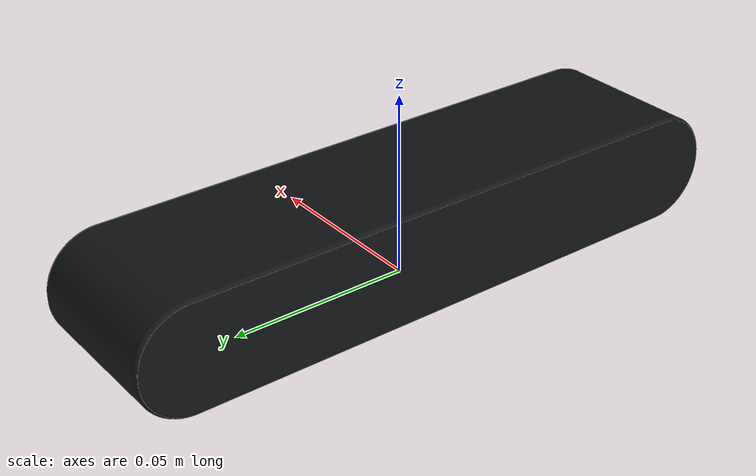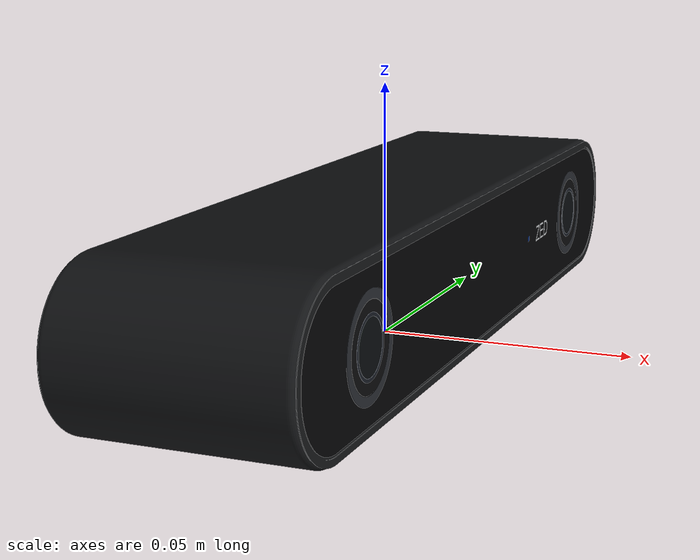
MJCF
<?xml version='1.0' encoding='utf-8'?>
<mujoco model="zed2i">
  <!--Independent approximate geometry; fixed sites are geometric references, not calibrated optical frames.-->
  <compiler angle="radian" inertiafromgeom="false" strippath="false" />
  <option timestep="0.002" gravity="0 0 -9.81" />
  <asset>
    <mesh name="zed2i_visual_mesh_0" file="../assets/meshes/visual/contact_gold.obj" scale="1 1 1" inertia="shell" />
    <mesh name="zed2i_visual_mesh_1" file="../assets/meshes/visual/glass_coating.obj" scale="1 1 1" inertia="shell" />
    <mesh name="zed2i_visual_mesh_2" file="../assets/meshes/visual/housing.obj" scale="1 1 1" inertia="shell" />
    <mesh name="zed2i_visual_mesh_3" file="../assets/meshes/visual/lens_ring.obj" scale="1 1 1" inertia="shell" />
    <mesh name="zed2i_visual_mesh_4" file="../assets/meshes/visual/markings.obj" scale="1 1 1" inertia="shell" />
    <mesh name="zed2i_visual_mesh_5" file="../assets/meshes/visual/optical_glass.obj" scale="1 1 1" inertia="shell" />
    <mesh name="zed2i_visual_mesh_6" file="../assets/meshes/visual/rubber.obj" scale="1 1 1" inertia="shell" />
    <mesh name="zed2i_visual_mesh_7" file="../assets/meshes/visual/screw_metal.obj" scale="1 1 1" inertia="shell" />
    <mesh name="zed2i_visual_mesh_8" file="../assets/meshes/visual/seam.obj" scale="1 1 1" inertia="shell" />
    <mesh name="zed2i_visual_mesh_9" file="../assets/meshes/visual/status_blue.obj" scale="1 1 1" inertia="shell" />
    <mesh name="zed2i_collision_mesh_0" file="../assets/meshes/collision/body.stl" scale="1 1 1" inertia="convex" />
  </asset>
  <worldbody>
    <body name="zed2i_link">
      <inertial pos="0 0 0.015125" mass="0.23" diaginertia="0.000606196145833 5.31428895833e-05 0.000624261639583" quat="1 0 0 0" />
      <geom name="zed2i_visual_0" type="mesh" mesh="zed2i_visual_mesh_0" pos="0 0 0" quat="1 0 0 0" density="0" group="2" contype="0" conaffinity="0" rgba="0.64 0.48 0.2 1" />
      <geom name="zed2i_visual_1" type="mesh" mesh="zed2i_visual_mesh_1" pos="0 0 0" quat="1 0 0 0" density="0" group="2" contype="0" conaffinity="0" rgba="0.075 0.09 0.125 1" />
      <geom name="zed2i_visual_2" type="mesh" mesh="zed2i_visual_mesh_2" pos="0 0 0" quat="1 0 0 0" density="0" group="2" contype="0" conaffinity="0" rgba="0.075 0.08 0.087 1" />
      <geom name="zed2i_visual_3" type="mesh" mesh="zed2i_visual_mesh_3" pos="0 0 0" quat="1 0 0 0" density="0" group="2" contype="0" conaffinity="0" rgba="0.14 0.15 0.17 1" />
      <geom name="zed2i_visual_4" type="mesh" mesh="zed2i_visual_mesh_4" pos="0 0 0" quat="1 0 0 0" density="0" group="2" contype="0" conaffinity="0" rgba="0.74 0.75 0.76 1" />
      <geom name="zed2i_visual_5" type="mesh" mesh="zed2i_visual_mesh_5" pos="0 0 0" quat="1 0 0 0" density="0" group="2" contype="0" conaffinity="0" rgba="0.021 0.035 0.044 1" />
      <geom name="zed2i_visual_6" type="mesh" mesh="zed2i_visual_mesh_6" pos="0 0 0" quat="1 0 0 0" density="0" group="2" contype="0" conaffinity="0" rgba="0.027 0.029 0.032 1" />
      <geom name="zed2i_visual_7" type="mesh" mesh="zed2i_visual_mesh_7" pos="0 0 0" quat="1 0 0 0" density="0" group="2" contype="0" conaffinity="0" rgba="0.31 0.32 0.34 1" />
      <geom name="zed2i_visual_8" type="mesh" mesh="zed2i_visual_mesh_8" pos="0 0 0" quat="1 0 0 0" density="0" group="2" contype="0" conaffinity="0" rgba="0.008 0.009 0.012 1" />
      <geom name="zed2i_visual_9" type="mesh" mesh="zed2i_visual_mesh_9" pos="0 0 0" quat="1 0 0 0" density="0" group="2" contype="0" conaffinity="0" rgba="0.025 0.16 0.45 1" />
      <geom name="zed2i_collision_0" type="mesh" mesh="zed2i_collision_mesh_0" pos="0 0 0" quat="1 0 0 0" density="0" group="3" contype="1" conaffinity="1" rgba="0 0 0 0" />
      <site name="zed2i_mount" pos="0 0 0" quat="1 0 0 0" type="sphere" size="0.001" group="4" rgba="0 0 0 0" />
      <site name="zed2i_left_lens_surface" pos="0.02155 -0.06 0.015125" quat="0.500000000002 -0.5 0.499999999998 -0.5" type="sphere" size="0.001" group="4" rgba="0 0 0 0" />
      <site name="zed2i_right_lens_surface" pos="0.02155 0.06 0.015125" quat="0.500000000002 -0.5 0.499999999998 -0.5" type="sphere" size="0.001" group="4" rgba="0 0 0 0" />
    </body>
  </worldbody>
</mujoco>
